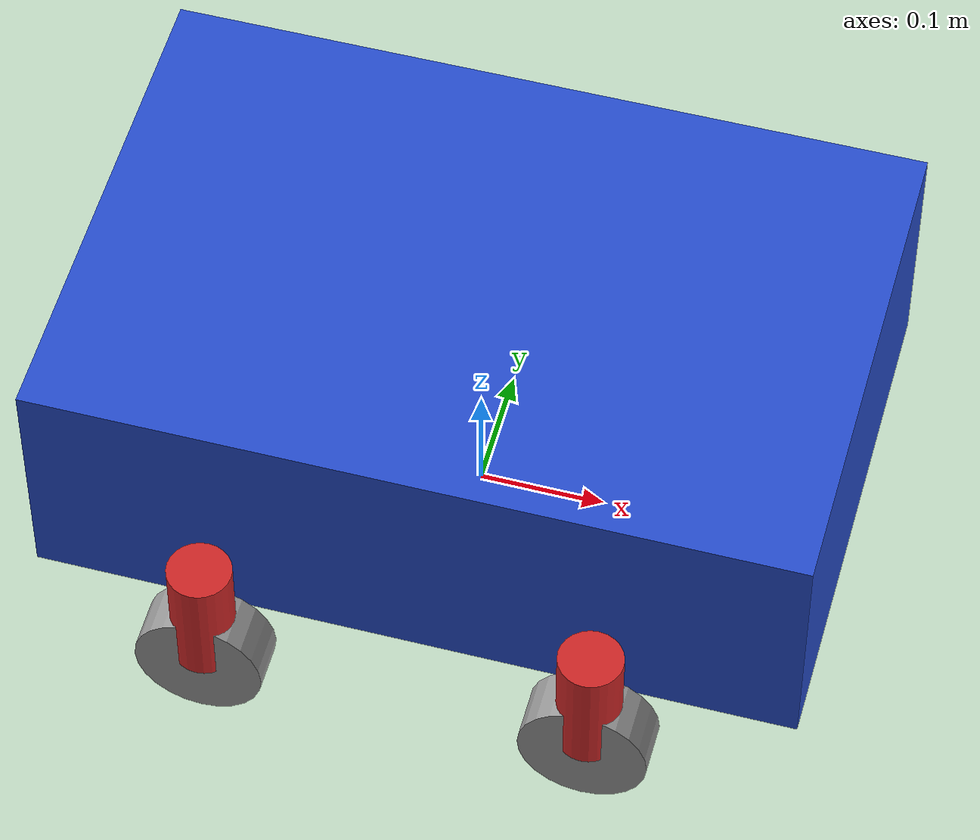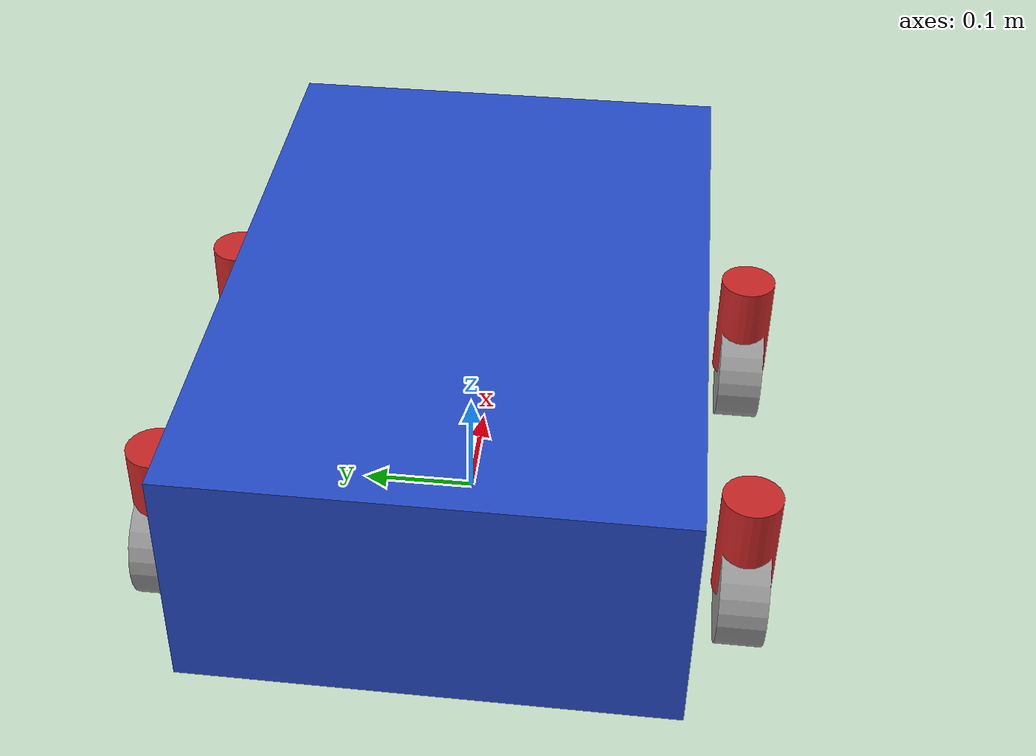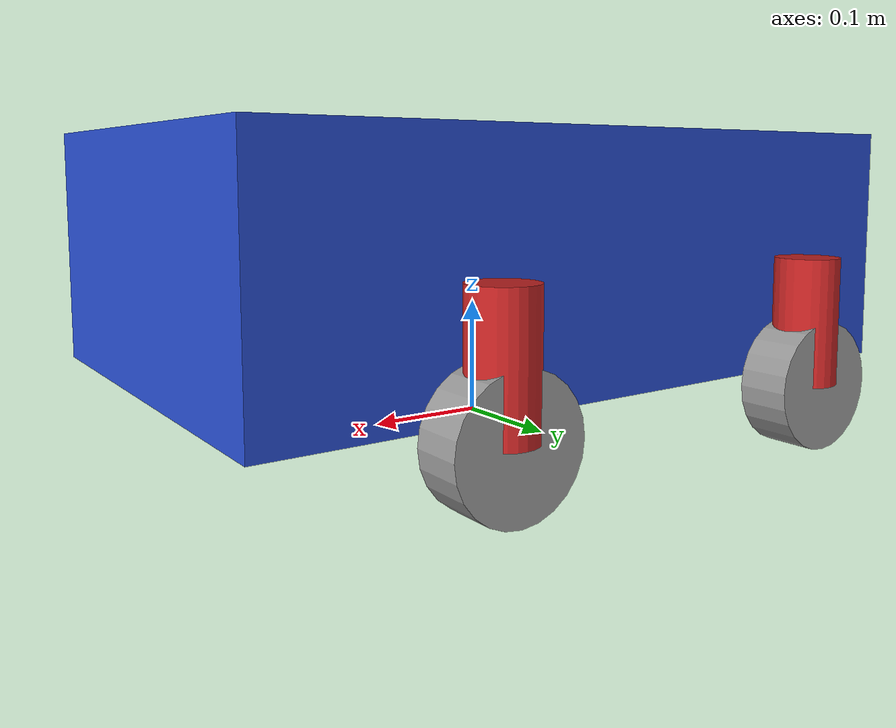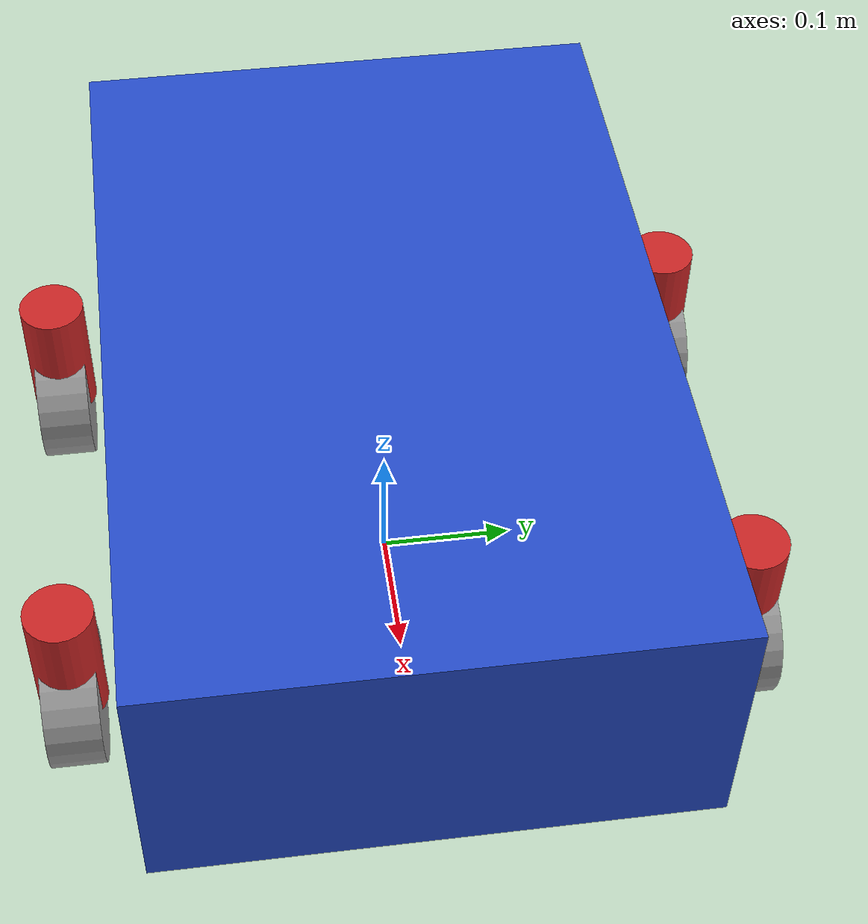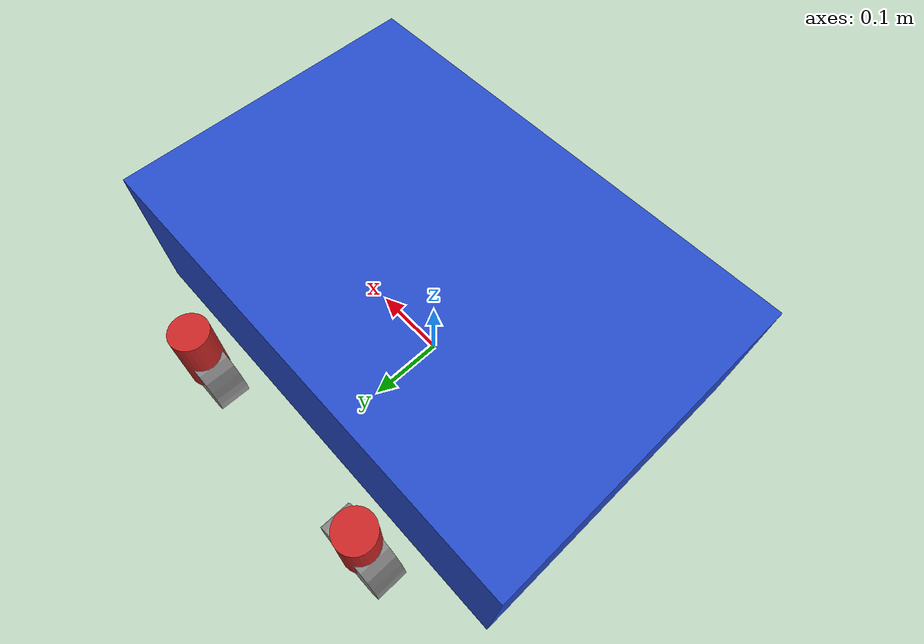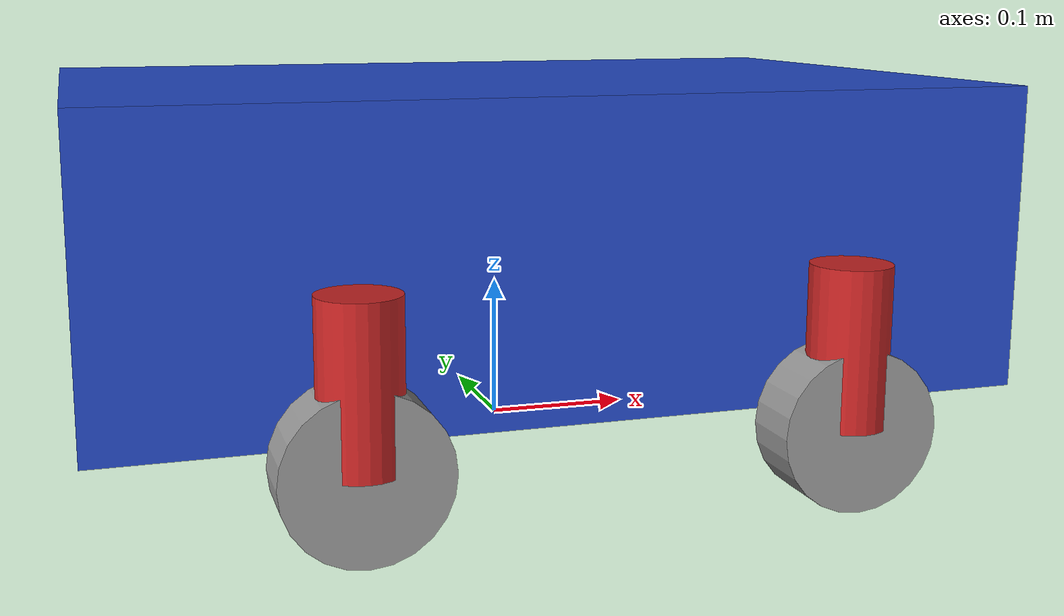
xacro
<?xml version="1.0"?>
<robot xmlns:xacro="http://www.ros.org/wiki/xacro">

    <xacro:property name="base_length" value="0.6" />
    <xacro:property name="base_width" value="0.4" />
    <xacro:property name="base_height" value="0.2" />
    <xacro:property name="wheel_radius" value="0.05" />
    <xacro:property name="wheel_length" value="0.04" />

    <xacro:property name="wheel_clearance" value="0.025" />

    <xacro:macro name="box_inertia" params="m l w h">
        <inertial>
            <mass value="${m}"/>
            <inertia ixx="${(m/12) * (h*h + l*l)}" ixy="0.0" ixz="0.0"
                 iyy="${(m/12) * (w*w + l*l)}" iyz="0.0"
                 izz="${(m/12) * (w*w + h*h)}"/>
        </inertial>
    </xacro:macro>

    <xacro:macro name="cylinder_inertia" params="m r h">
        <inertial>
            <mass value="${m}"/>
            <inertia ixx="${(m/12) * (3*r*r + h*h)}" ixy = "0" ixz = "0"
                     iyy="${(m/12) * (3*r*r + h*h)}" iyz = "0"
                     izz="${(m/2) * (r*r)}"/>
        </inertial>
    </xacro:macro>

    <link name="base_footprint" />

    <link name="base_link">
        <visual>
            <geometry>
                <box size="${base_length} ${base_width} ${base_height}" />
            </geometry>
            <origin xyz="0 0 ${base_height / 2.0}" rpy="0 0 0" />
            <material name="blue" />
        </visual>
        <collision>
            <geometry>
                <box size="${base_length} ${base_width} ${base_height}" />
            </geometry>
            <origin xyz="0 0 ${base_height / 2.0}" rpy="0 0 0" />
        </collision>
        <xacro:box_inertia m="10.0" l="${base_length}" w="${base_width}" h="${base_height}"/>
    </link>

    <xacro:macro name="wheel_link" params="prefix">
        <link name="${prefix}_wheel_link">
            <visual>
                <geometry>
                    <cylinder radius="${wheel_radius}" length="${wheel_length}" />
                </geometry>
                <origin xyz="0 0 0" rpy="${pi / 2.0} 0 0" />
                <material name="grey" />
            </visual>
            <collision>
                <geometry>
                    <cylinder radius="${wheel_radius}" length="${wheel_length}" />
                </geometry>
                <origin xyz="0 0 0" rpy="${pi / 2.0} 0 0" />
            </collision>
            <xacro:cylinder_inertia m="1.0" r="${wheel_radius}" h="${wheel_length}"/>
        </link>

        <gazebo reference="${prefix}_wheel_link">
            <mu1>1.0</mu1>
            <mu2>1.0</mu2>
            <kp>1000000.0</kp>
            <kd>100.0</kd>
        </gazebo>
    </xacro:macro>

    <xacro:macro name="pivot_link" params="prefix">
        <link name="${prefix}_pivot_link">
            <visual>
                <geometry>
                    <cylinder radius="${wheel_radius/2.0}" length="${base_height - 2.0 * wheel_radius}" />
                </geometry>
                <origin xyz="0 0 0" rpy="0 0 0" />
                <material name="red" />
            </visual>
            <collision>
                <geometry>
                    <cylinder radius="${wheel_radius/2.0}" length="${base_height - 2.0 * wheel_radius}" />
                </geometry>
                <origin xyz="0 0 0" rpy="0 0 0" />
            </collision>
            <xacro:cylinder_inertia m="0.5" r="${wheel_radius/2.0}" h="${base_height - 2.0 * wheel_radius}"/>
        </link>
    </xacro:macro>

    <xacro:wheel_link prefix="front_right" />
    <xacro:wheel_link prefix="front_left" />
    <xacro:wheel_link prefix="back_right" />
    <xacro:wheel_link prefix="back_left" />

    <xacro:pivot_link prefix="front_right" />
    <xacro:pivot_link prefix="front_left" />
    <xacro:pivot_link prefix="back_right" />
    <xacro:pivot_link prefix="back_left" />

    <joint name="base_joint" type="fixed">
        <parent link="base_footprint" />
        <child link="base_link" />
        <origin xyz="0 0 ${wheel_radius}" rpy="0 0 0"/>
    </joint>

    <joint name="base_front_right_pivot_joint" type="continuous">
        <parent link="base_link" />
        <child link="front_right_pivot_link" />
        <origin xyz="${-base_length / 4.0} ${-(base_width + wheel_length) / 2.0 - wheel_clearance} ${wheel_radius}" rpy="0 0 0" />
        <axis xyz="0 0 1" />
        <limit effort="100" velocity="10.0" />
    </joint>

    <joint name="base_front_left_pivot_joint" type="continuous">
        <parent link="base_link" />
        <child link="front_left_pivot_link" />
        <origin xyz="${-base_length / 4.0} ${(base_width + wheel_length) / 2.0 + wheel_clearance} ${wheel_radius}" rpy="0 0 0" />
        <axis xyz="0 0 1" />
        <limit effort="100" velocity="10.0" />
    </joint>

    <joint name="base_back_right_pivot_joint" type="continuous">
        <parent link="base_link" />
        <child link="back_right_pivot_link" />
        <origin xyz="${base_length / 4.0} ${-(base_width + wheel_length) / 2.0 - wheel_clearance} ${wheel_radius}" rpy="0 0 0" />
        <axis xyz="0 0 1" />
        <limit effort="100" velocity="10.0" />
    </joint>

    <joint name="base_back_left_pivot_joint" type="continuous">
        <parent link="base_link" />
        <child link="back_left_pivot_link" />
        <origin xyz="${base_length / 4.0} ${(base_width + wheel_length) / 2.0 + wheel_clearance} ${wheel_radius}" rpy="0 0 0" />
        <axis xyz="0 0 1" />
        <limit effort="100" velocity="10.0" />
    </joint>

    <joint name="base_front_right_wheel_joint" type="continuous">
        <parent link="front_right_pivot_link" />
        <child link="front_right_wheel_link" />
        <origin xyz="0 0 ${-(base_height - 2.0 * wheel_radius)/2.0}" rpy="0 0 0" />
        <axis xyz="0 1 0" />
        <limit effort="200" velocity="20.0" />
    </joint>

    <joint name="base_front_left_wheel_joint" type="continuous">
        <parent link="front_left_pivot_link" />
        <child link="front_left_wheel_link" />
        <origin xyz="0 0 ${-(base_height - 2.0 * wheel_radius)/2.0}" rpy="0 0 0" />
        <axis xyz="0 1 0" />
        <limit effort="200" velocity="20.0" />
    </joint>

    <joint name="base_back_right_wheel_joint" type="continuous">
        <parent link="back_right_pivot_link" />
        <child link="back_right_wheel_link" />
        <origin xyz="0 0 ${-(base_height - 2.0 * wheel_radius)/2.0}" rpy="0 0 0" />
        <axis xyz="0 1 0" />
        <limit effort="200" velocity="20.0" />
    </joint>

    <joint name="base_back_left_wheel_joint" type="continuous">
        <parent link="back_left_pivot_link" />
        <child link="back_left_wheel_link" />
        <origin xyz="0 0 ${-(base_height - 2.0 * wheel_radius)/2.0}" rpy="0 0 0" />
        <axis xyz="0 1 0" />
        <limit effort="200" velocity="20.0" />
    </joint>

</robot>
